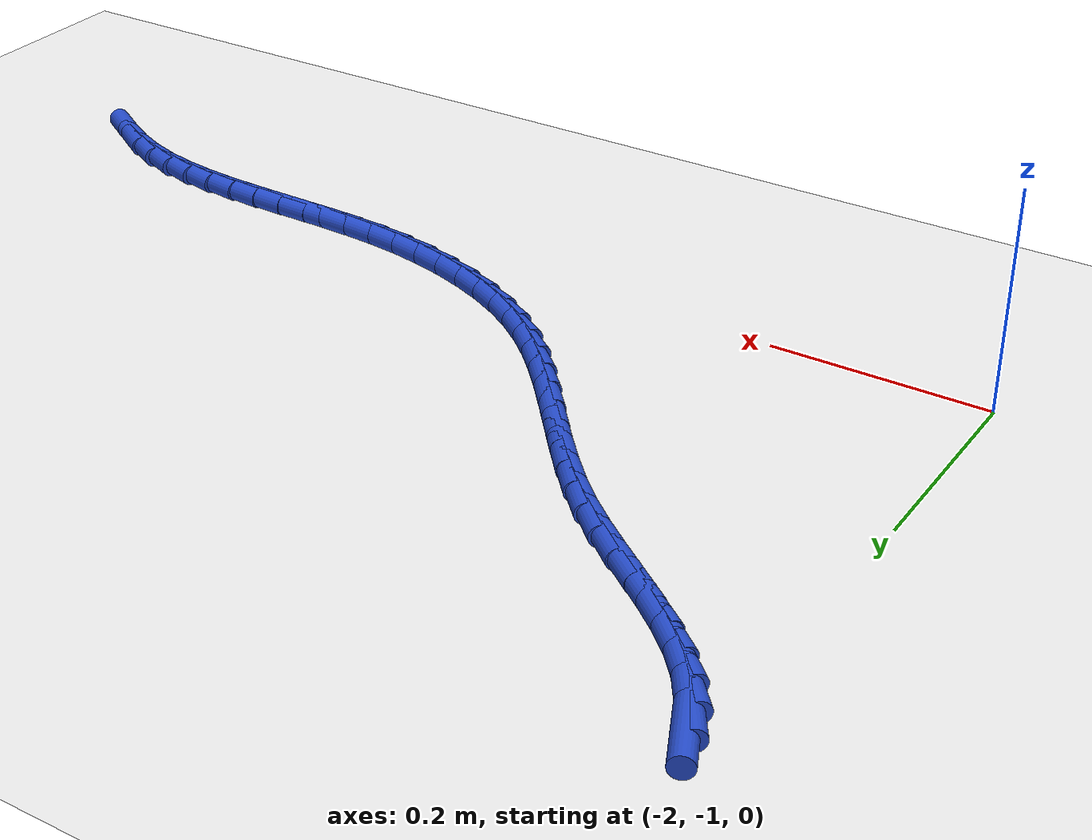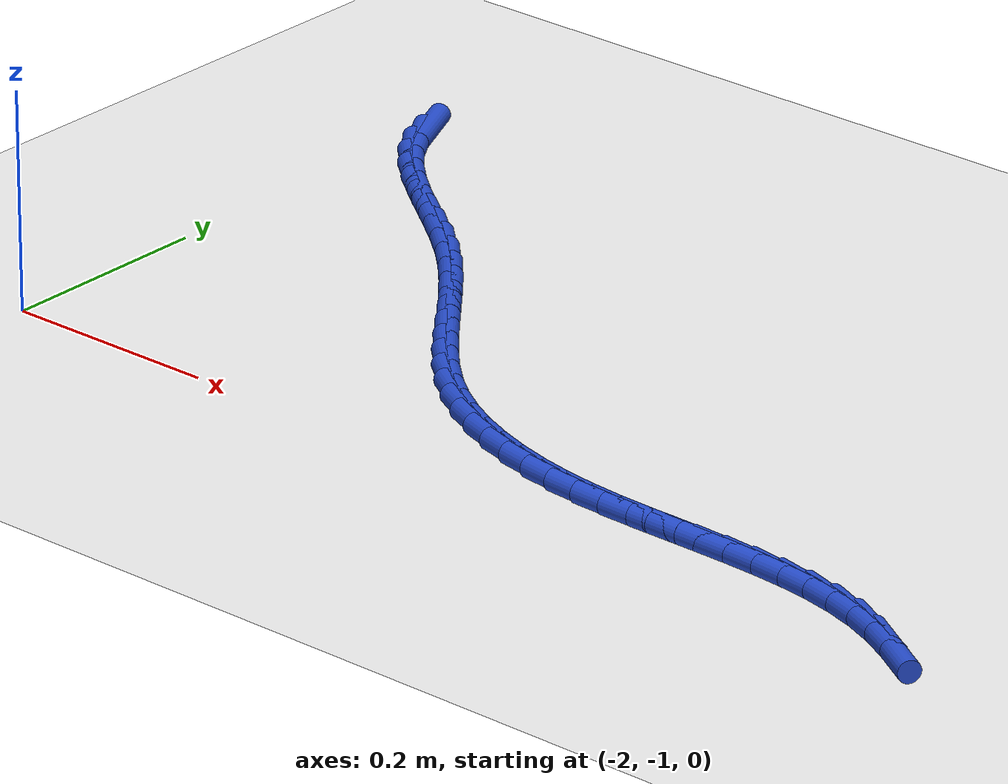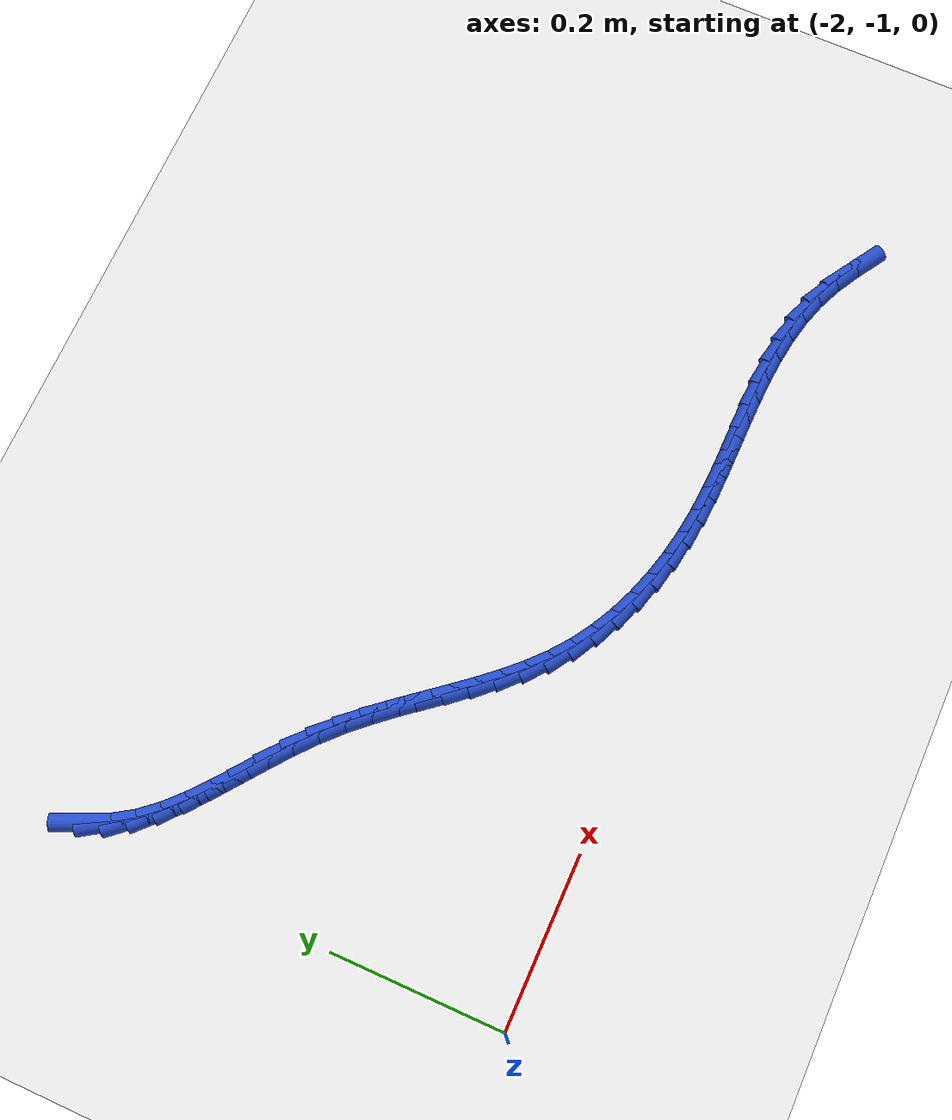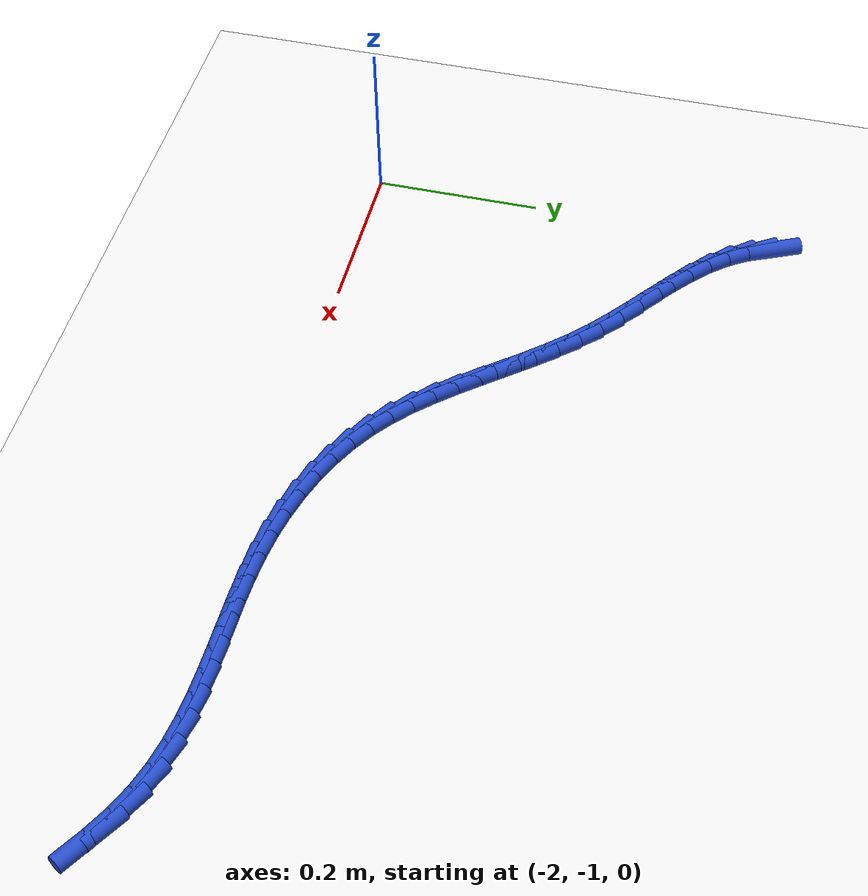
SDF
<sdf version="1.6">
 <world name="default">
  <model name="ground_plane">
   <static>1</static>
   <link name="link">
    <collision name="collision">
     <geometry><plane><normal>0 0 1</normal><size>100 100</size></plane></geometry>
     <surface><friction><ode><mu>100</mu><mu2>50</mu2></ode></friction></surface>
    </collision>
    <visual name="visual">
     <cast_shadows>0</cast_shadows>
     <geometry><plane><normal>0 0 1</normal><size>100 100</size></plane></geometry>
     <material>
      <script><uri>file://media/materials/scripts/gazebo.material</uri><name>Gazebo/WhiteGlow</name></script>
     </material>
    </visual>
   </link>
  </model>
  <model name="line">
   <link name="link_134">
    <pose>-1.9819871328369765 -0.5083017439722539 0.01 0 1.57 -1.1472786030895556</pose>
    <collision name="collision">
     <geometry><cylinder><radius>0.01</radius><length>0.08</length></cylinder></geometry>
    </collision>
    <visual name="visual">
     <material>
      <script><name>Gazebo/Blue</name><uri>file://media/materials/scripts/gazebo.material</uri></script>
     </material>
     <geometry><cylinder><radius>0.01</radius><length>0.08</length></cylinder></geometry>
    </visual>
   </link>
   <link name="link_135">
    <pose>-1.9710435361021006 -0.5325777737779223 0.01 0 1.57 -0.9995918153081216</pose>
    <collision name="collision">
     <geometry><cylinder><radius>0.01</radius><length>0.08</length></cylinder></geometry>
    </collision>
    <visual name="visual">
     <material>
      <script><name>Gazebo/Blue</name><uri>file://media/materials/scripts/gazebo.material</uri></script>
     </material>
     <geometry><cylinder><radius>0.01</radius><length>0.08</length></cylinder></geometry>
    </visual>
   </link>
   <link name="link_136">
    <pose>-1.956557658707919 -0.555117949200757 0.01 0 1.57 -0.8633081803833614</pose>
    <collision name="collision">
     <geometry><cylinder><radius>0.01</radius><length>0.08</length></cylinder></geometry>
    </collision>
    <visual name="visual">
     <material>
      <script><name>Gazebo/Blue</name><uri>file://media/materials/scripts/gazebo.material</uri></script>
     </material>
     <geometry><cylinder><radius>0.01</radius><length>0.08</length></cylinder></geometry>
    </visual>
   </link>
   <link name="link_137">
    <pose>-1.9386618496659844 -0.5760445474004435 0.01 0 1.57 -0.7632694308985687</pose>
    <collision name="collision">
     <geometry><cylinder><radius>0.01</radius><length>0.08</length></cylinder></geometry>
    </collision>
    <visual name="visual">
     <material>
      <script><name>Gazebo/Blue</name><uri>file://media/materials/scripts/gazebo.material</uri></script>
     </material>
     <geometry><cylinder><radius>0.01</radius><length>0.08</length></cylinder></geometry>
    </visual>
   </link>
   <link name="link_138">
    <pose>-1.9180526266395543 -0.5957612628358516 0.01 0 1.57 -0.6969713283128142</pose>
    <collision name="collision">
     <geometry><cylinder><radius>0.01</radius><length>0.08</length></cylinder></geometry>
    </collision>
    <visual name="visual">
     <material>
      <script><name>Gazebo/Blue</name><uri>file://media/materials/scripts/gazebo.material</uri></script>
     </material>
     <geometry><cylinder><radius>0.01</radius><length>0.08</length></cylinder></geometry>
    </visual>
   </link>
   <link name="link_139">
    <pose>-1.895449221154885 -0.6146831200423464 0.01 0 1.57 -0.6602590558922102</pose>
    <collision name="collision">
     <geometry><cylinder><radius>0.01</radius><length>0.08</length></cylinder></geometry>
    </collision>
    <visual name="visual">
     <material>
      <script><name>Gazebo/Blue</name><uri>file://media/materials/scripts/gazebo.material</uri></script>
     </material>
     <geometry><cylinder><radius>0.01</radius><length>0.08</length></cylinder></geometry>
    </visual>
   </link>
   <link name="link_140">
    <pose>-1.8715708647382348 -0.6332251435552939 0.01 0 1.57 -0.6500602342655819</pose>
    <collision name="collision">
     <geometry><cylinder><radius>0.01</radius><length>0.08</length></cylinder></geometry>
    </collision>
    <visual name="visual">
     <material>
      <script><name>Gazebo/Blue</name><uri>file://media/materials/scripts/gazebo.material</uri></script>
     </material>
     <geometry><cylinder><radius>0.01</radius><length>0.08</length></cylinder></geometry>
    </visual>
   </link>
   <link name="link_141">
    <pose>-1.847136788915862 -0.6518023579100581 0.01 0 1.57 -0.6648907536070605</pose>
    <collision name="collision">
     <geometry><cylinder><radius>0.01</radius><length>0.08</length></cylinder></geometry>
    </collision>
    <visual name="visual">
     <material>
      <script><name>Gazebo/Blue</name><uri>file://media/materials/scripts/gazebo.material</uri></script>
     </material>
     <geometry><cylinder><radius>0.01</radius><length>0.08</length></cylinder></geometry>
    </visual>
   </link>
   <link name="link_142">
    <pose>-1.8228662252140242 -0.6708297876420054 0.01 0 1.57 -0.7048172329643356</pose>
    <collision name="collision">
     <geometry><cylinder><radius>0.01</radius><length>0.08</length></cylinder></geometry>
    </collision>
    <visual name="visual">
     <material>
      <script><name>Gazebo/Blue</name><uri>file://media/materials/scripts/gazebo.material</uri></script>
     </material>
     <geometry><cylinder><radius>0.01</radius><length>0.08</length></cylinder></geometry>
    </visual>
   </link>
   <link name="link_143">
    <pose>-1.79947840515898 -0.6907224572865008 0.01 0 1.57 -0.7661985098512396</pose>
    <collision name="collision">
     <geometry><cylinder><radius>0.01</radius><length>0.08</length></cylinder></geometry>
    </collision>
    <visual name="visual">
     <material>
      <script><name>Gazebo/Blue</name><uri>file://media/materials/scripts/gazebo.material</uri></script>
     </material>
     <geometry><cylinder><radius>0.01</radius><length>0.08</length></cylinder></geometry>
    </visual>
   </link>
   <link name="link_144">
    <pose>-1.7775680052524196 -0.7118072626989056 0.01 0 1.57 -0.8218928450748629</pose>
    <collision name="collision">
     <geometry><cylinder><radius>0.01</radius><length>0.08</length></cylinder></geometry>
    </collision>
    <visual name="visual">
     <material>
      <script><name>Gazebo/Blue</name><uri>file://media/materials/scripts/gazebo.material</uri></script>
     </material>
     <geometry><cylinder><radius>0.01</radius><length>0.08</length></cylinder></geometry>
    </visual>
   </link>
   <link name="link_145">
    <pose>-1.757022034044475 -0.7339103905687313 0.01 0 1.57 -0.8615096376390817</pose>
    <collision name="collision">
     <geometry><cylinder><radius>0.01</radius><length>0.08</length></cylinder></geometry>
    </collision>
    <visual name="visual">
     <material>
      <script><name>Gazebo/Blue</name><uri>file://media/materials/scripts/gazebo.material</uri></script>
     </material>
     <geometry><cylinder><radius>0.01</radius><length>0.08</length></cylinder></geometry>
    </visual>
   </link>
   <link name="link_146">
    <pose>-1.7374779025230354 -0.7566814252864713 0.01 0 1.57 -0.8846851896017617</pose>
    <collision name="collision">
     <geometry><cylinder><radius>0.01</radius><length>0.08</length></cylinder></geometry>
    </collision>
    <visual name="visual">
     <material>
      <script><name>Gazebo/Blue</name><uri>file://media/materials/scripts/gazebo.material</uri></script>
     </material>
     <geometry><cylinder><radius>0.01</radius><length>0.08</length></cylinder></geometry>
    </visual>
   </link>
   <link name="link_147">
    <pose>-1.7185727396104964 -0.7797697516676957 0.01 0 1.57 -0.8911799859018347</pose>
    <collision name="collision">
     <geometry><cylinder><radius>0.01</radius><length>0.08</length></cylinder></geometry>
    </collision>
    <visual name="visual">
     <material>
      <script><name>Gazebo/Blue</name><uri>file://media/materials/scripts/gazebo.material</uri></script>
     </material>
     <geometry><cylinder><radius>0.01</radius><length>0.08</length></cylinder></geometry>
    </visual>
   </link>
   <link name="link_148">
    <pose>-1.6999436742292549 -0.8028247545279745 0.01 0 1.57 -0.8806758812039163</pose>
    <collision name="collision">
     <geometry><cylinder><radius>0.01</radius><length>0.08</length></cylinder></geometry>
    </collision>
    <visual name="visual">
     <material>
      <script><name>Gazebo/Blue</name><uri>file://media/materials/scripts/gazebo.material</uri></script>
     </material>
     <geometry><cylinder><radius>0.01</radius><length>0.08</length></cylinder></geometry>
    </visual>
   </link>
   <link name="link_149">
    <pose>-1.6812278353017083 -0.8254958186828762 0.01 0 1.57 -0.8527146011966741</pose>
    <collision name="collision">
     <geometry><cylinder><radius>0.01</radius><length>0.08</length></cylinder></geometry>
    </collision>
    <visual name="visual">
     <material>
      <script><name>Gazebo/Blue</name><uri>file://media/materials/scripts/gazebo.material</uri></script>
     </material>
     <geometry><cylinder><radius>0.01</radius><length>0.08</length></cylinder></geometry>
    </visual>
   </link>
   <link name="link_150">
    <pose>-1.6620623517502526 -0.8474323289479714 0.01 0 1.57 -0.8067849595162349</pose>
    <collision name="collision">
     <geometry><cylinder><radius>0.01</radius><length>0.08</length></cylinder></geometry>
    </collision>
    <visual name="visual">
     <material>
      <script><name>Gazebo/Blue</name><uri>file://media/materials/scripts/gazebo.material</uri></script>
     </material>
     <geometry><cylinder><radius>0.01</radius><length>0.08</length></cylinder></geometry>
    </visual>
   </link>
   <link name="link_151">
    <pose>-1.6420843524972843 -0.8682836701388293 0.01 0 1.57 -0.742587895433203</pose>
    <collision name="collision">
     <geometry><cylinder><radius>0.01</radius><length>0.08</length></cylinder></geometry>
    </collision>
    <visual name="visual">
     <material>
      <script><name>Gazebo/Blue</name><uri>file://media/materials/scripts/gazebo.material</uri></script>
     </material>
     <geometry><cylinder><radius>0.01</radius><length>0.08</length></cylinder></geometry>
    </visual>
   </link>
   <link name="link_152">
    <pose>-1.6209309664652016 -0.8876992270710204 0.01 0 1.57 -0.6605033157493869</pose>
    <collision name="collision">
     <geometry><cylinder><radius>0.01</radius><length>0.08</length></cylinder></geometry>
    </collision>
    <visual name="visual">
     <material>
      <script><name>Gazebo/Blue</name><uri>file://media/materials/scripts/gazebo.material</uri></script>
     </material>
     <geometry><cylinder><radius>0.01</radius><length>0.08</length></cylinder></geometry>
    </visual>
   </link>
   <link name="link_153">
    <pose>-1.5982394983418742 -0.9053284943831016 0.01 0 1.57 -0.5674963730013448</pose>
    <collision name="collision">
     <geometry><cylinder><radius>0.01</radius><length>0.08</length></cylinder></geometry>
    </collision>
    <visual name="visual">
     <material>
      <script><name>Gazebo/Blue</name><uri>file://media/materials/scripts/gazebo.material</uri></script>
     </material>
     <geometry><cylinder><radius>0.01</radius><length>0.08</length></cylinder></geometry>
    </visual>
   </link>
   <link name="link_154">
    <pose>-1.5737927507183513 -0.9209118777091582 0.01 0 1.57 -0.4797674710861295</pose>
    <collision name="collision">
     <geometry><cylinder><radius>0.01</radius><length>0.08</length></cylinder></geometry>
    </collision>
    <visual name="visual">
     <material>
      <script><name>Gazebo/Blue</name><uri>file://media/materials/scripts/gazebo.material</uri></script>
     </material>
     <geometry><cylinder><radius>0.01</radius><length>0.08</length></cylinder></geometry>
    </visual>
   </link>
   <link name="link_155">
    <pose>-1.5477825780054717 -0.934445369240534 0.01 0 1.57 -0.39930182738111236</pose>
    <collision name="collision">
     <geometry><cylinder><radius>0.01</radius><length>0.08</length></cylinder></geometry>
    </collision>
    <visual name="visual">
     <material>
      <script><name>Gazebo/Blue</name><uri>file://media/materials/scripts/gazebo.material</uri></script>
     </material>
     <geometry><cylinder><radius>0.01</radius><length>0.08</length></cylinder></geometry>
    </visual>
   </link>
   <link name="link_156">
    <pose>-1.5204721910080017 -0.9459695465589297 0.01 0 1.57 -0.32512199653479884</pose>
    <collision name="collision">
     <geometry><cylinder><radius>0.01</radius><length>0.08</length></cylinder></geometry>
    </collision>
    <visual name="visual">
     <material>
      <script><name>Gazebo/Blue</name><uri>file://media/materials/scripts/gazebo.material</uri></script>
     </material>
     <geometry><cylinder><radius>0.01</radius><length>0.08</length></cylinder></geometry>
    </visual>
   </link>
   <link name="link_157">
    <pose>-1.4921248005307088 -0.9555249872460472 0.01 0 1.57 -0.256161186850943</pose>
    <collision name="collision">
     <geometry><cylinder><radius>0.01</radius><length>0.08</length></cylinder></geometry>
    </collision>
    <visual name="visual">
     <material>
      <script><name>Gazebo/Blue</name><uri>file://media/materials/scripts/gazebo.material</uri></script>
     </material>
     <geometry><cylinder><radius>0.01</radius><length>0.08</length></cylinder></geometry>
    </visual>
   </link>
   <link name="link_158">
    <pose>-1.4630036173783607 -0.963152268883587 0.01 0 1.57 -0.19133148137401704</pose>
    <collision name="collision">
     <geometry><cylinder><radius>0.01</radius><length>0.08</length></cylinder></geometry>
    </collision>
    <visual name="visual">
     <material>
      <script><name>Gazebo/Blue</name><uri>file://media/materials/scripts/gazebo.material</uri></script>
     </material>
     <geometry><cylinder><radius>0.01</radius><length>0.08</length></cylinder></geometry>
    </visual>
   </link>
   <link name="link_159">
    <pose>-1.4333718523557242 -0.9688919690532505 0.01 0 1.57 -0.12981336603890722</pose>
    <collision name="collision">
     <geometry><cylinder><radius>0.01</radius><length>0.08</length></cylinder></geometry>
    </collision>
    <visual name="visual">
     <material>
      <script><name>Gazebo/Blue</name><uri>file://media/materials/scripts/gazebo.material</uri></script>
     </material>
     <geometry><cylinder><radius>0.01</radius><length>0.08</length></cylinder></geometry>
    </visual>
   </link>
   <link name="link_160">
    <pose>-1.4034886347881863 -0.9727931483591766 0.01 0 1.57 -0.07697658744474843</pose>
    <collision name="collision">
     <geometry><cylinder><radius>0.01</radius><length>0.08</length></cylinder></geometry>
    </collision>
    <visual name="visual">
     <material>
      <script><name>Gazebo/Blue</name><uri>file://media/materials/scripts/gazebo.material</uri></script>
     </material>
     <geometry><cylinder><radius>0.01</radius><length>0.08</length></cylinder></geometry>
    </visual>
   </link>
   <link name="link_161">
    <pose>-1.3735168804538713 -0.9751048394264733 0.01 0 1.57 -0.039118237668758674</pose>
    <collision name="collision">
     <geometry><cylinder><radius>0.01</radius><length>0.08</length></cylinder></geometry>
    </collision>
    <visual name="visual">
     <material>
      <script><name>Gazebo/Blue</name><uri>file://media/materials/scripts/gazebo.material</uri></script>
     </material>
     <geometry><cylinder><radius>0.01</radius><length>0.08</length></cylinder></geometry>
    </visual>
   </link>
   <link name="link_162">
    <pose>-1.3435219736170283 -0.9762787861874671 0.01 0 1.57 -0.016588155666091155</pose>
    <collision name="collision">
     <geometry><cylinder><radius>0.01</radius><length>0.08</length></cylinder></geometry>
    </collision>
    <visual name="visual">
     <material>
      <script><name>Gazebo/Blue</name><uri>file://media/materials/scripts/gazebo.material</uri></script>
     </material>
     <geometry><cylinder><radius>0.01</radius><length>0.08</length></cylinder></geometry>
    </visual>
   </link>
   <link name="link_163">
    <pose>-1.3135649534539109 -0.9767757634859636 0.01 0 1.57 -0.009403627721173499</pose>
    <collision name="collision">
     <geometry><cylinder><radius>0.01</radius><length>0.08</length></cylinder></geometry>
    </collision>
    <visual name="visual">
     <material>
      <script><name>Gazebo/Blue</name><uri>file://media/materials/scripts/gazebo.material</uri></script>
     </material>
     <geometry><cylinder><radius>0.01</radius><length>0.08</length></cylinder></geometry>
    </visual>
   </link>
   <link name="link_164">
    <pose>-1.2837068591407703 -0.9770565461657672 0.01 0 1.57 -0.01768825597836346</pose>
    <collision name="collision">
     <geometry><cylinder><radius>0.01</radius><length>0.08</length></cylinder></geometry>
    </collision>
    <visual name="visual">
     <material>
      <script><name>Gazebo/Blue</name><uri>file://media/materials/scripts/gazebo.material</uri></script>
     </material>
     <geometry><cylinder><radius>0.01</radius><length>0.08</length></cylinder></geometry>
    </visual>
   </link>
   <link name="link_165">
    <pose>-1.2540087298538585 -0.9775819090706833 0.01 0 1.57 -0.041727393318740584</pose>
    <collision name="collision">
     <geometry><cylinder><radius>0.01</radius><length>0.08</length></cylinder></geometry>
    </collision>
    <visual name="visual">
     <material>
      <script><name>Gazebo/Blue</name><uri>file://media/materials/scripts/gazebo.material</uri></script>
     </material>
     <geometry><cylinder><radius>0.01</radius><length>0.08</length></cylinder></geometry>
    </visual>
   </link>
   <link name="link_166">
    <pose>-1.2245316047694257 -0.9788126270445164 0.01 0 1.57 -0.08191395538196312</pose>
    <collision name="collision">
     <geometry><cylinder><radius>0.01</radius><length>0.08</length></cylinder></geometry>
    </collision>
    <visual name="visual">
     <material>
      <script><name>Gazebo/Blue</name><uri>file://media/materials/scripts/gazebo.material</uri></script>
     </material>
     <geometry><cylinder><radius>0.01</radius><length>0.08</length></cylinder></geometry>
    </visual>
   </link>
   <link name="link_167">
    <pose>-1.1953365230637258 -0.9812094749310718 0.01 0 1.57 -0.13856807932763535</pose>
    <collision name="collision">
     <geometry><cylinder><radius>0.01</radius><length>0.08</length></cylinder></geometry>
    </collision>
    <visual name="visual">
     <material>
      <script><name>Gazebo/Blue</name><uri>file://media/materials/scripts/gazebo.material</uri></script>
     </material>
     <geometry><cylinder><radius>0.01</radius><length>0.08</length></cylinder></geometry>
    </visual>
   </link>
   <link name="link_168">
    <pose>-1.1664845239130102 -0.9852332275741549 0.01 0 1.57 -0.21161281654091663</pose>
    <collision name="collision">
     <geometry><cylinder><radius>0.01</radius><length>0.08</length></cylinder></geometry>
    </collision>
    <visual name="visual">
     <material>
      <script><name>Gazebo/Blue</name><uri>file://media/materials/scripts/gazebo.material</uri></script>
     </material>
     <geometry><cylinder><radius>0.01</radius><length>0.08</length></cylinder></geometry>
    </visual>
   </link>
   <link name="link_169">
    <pose>-1.1380366464935296 -0.9913446598175696 0.01 0 1.57 -0.3001245243600742</pose>
    <collision name="collision">
     <geometry><cylinder><radius>0.01</radius><length>0.08</length></cylinder></geometry>
    </collision>
    <visual name="visual">
     <material>
      <script><name>Gazebo/Blue</name><uri>file://media/materials/scripts/gazebo.material</uri></script>
     </material>
     <geometry><cylinder><radius>0.01</radius><length>0.08</length></cylinder></geometry>
    </visual>
   </link>
   <link name="link_170">
    <pose>-1.1100539299815362 -1.000004546505122 0.01 0 1.57 -0.4018699540833547</pose>
    <collision name="collision">
     <geometry><cylinder><radius>0.01</radius><length>0.08</length></cylinder></geometry>
    </collision>
    <visual name="visual">
     <material>
      <script><name>Gazebo/Blue</name><uri>file://media/materials/scripts/gazebo.material</uri></script>
     </material>
     <geometry><cylinder><radius>0.01</radius><length>0.08</length></cylinder></geometry>
    </visual>
   </link>
   <link name="link_171">
    <pose>-1.0825974042717221 -1.0116735474560323 0.01 0 1.57 -0.5008390802022606</pose>
    <collision name="collision">
     <geometry><cylinder><radius>0.01</radius><length>0.08</length></cylinder></geometry>
    </collision>
    <visual name="visual">
     <material>
      <script><name>Gazebo/Blue</name><uri>file://media/materials/scripts/gazebo.material</uri></script>
     </material>
     <geometry><cylinder><radius>0.01</radius><length>0.08</length></cylinder></geometry>
    </visual>
   </link>
   <link name="link_172">
    <pose>-1.0556948138943554 -1.0263998234015392 0.01 0 1.57 -0.557898297779398</pose>
    <collision name="collision">
     <geometry><cylinder><radius>0.01</radius><length>0.08</length></cylinder></geometry>
    </collision>
    <visual name="visual">
     <material>
      <script><name>Gazebo/Blue</name><uri>file://media/materials/scripts/gazebo.material</uri></script>
     </material>
     <geometry><cylinder><radius>0.01</radius><length>0.08</length></cylinder></geometry>
    </visual>
   </link>
  </model>
 </world>
</sdf>
